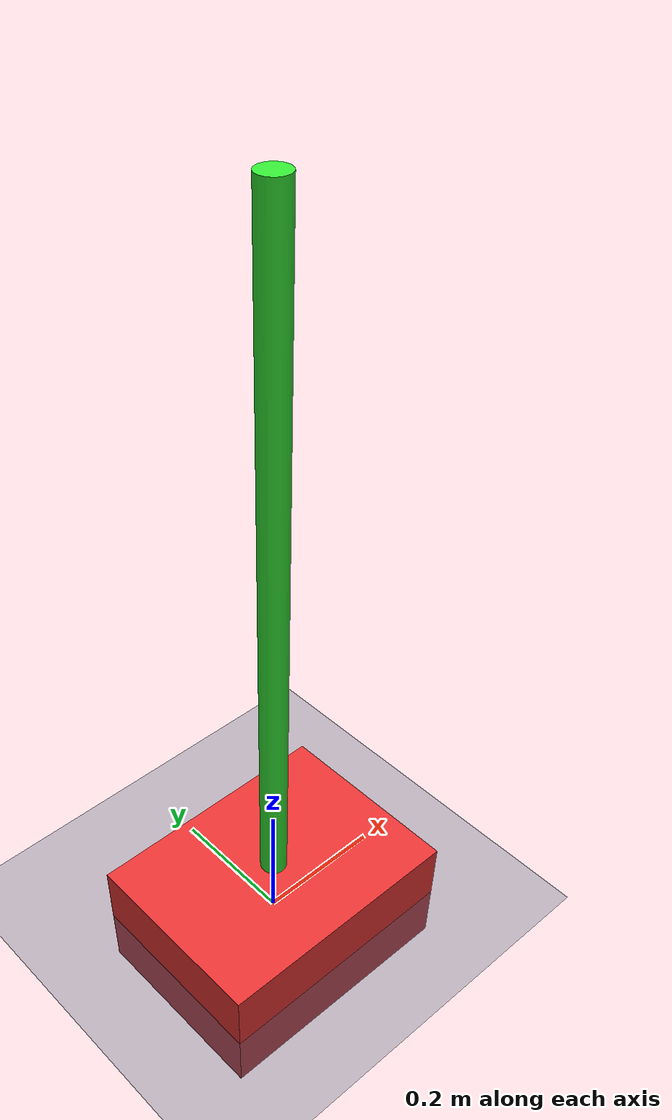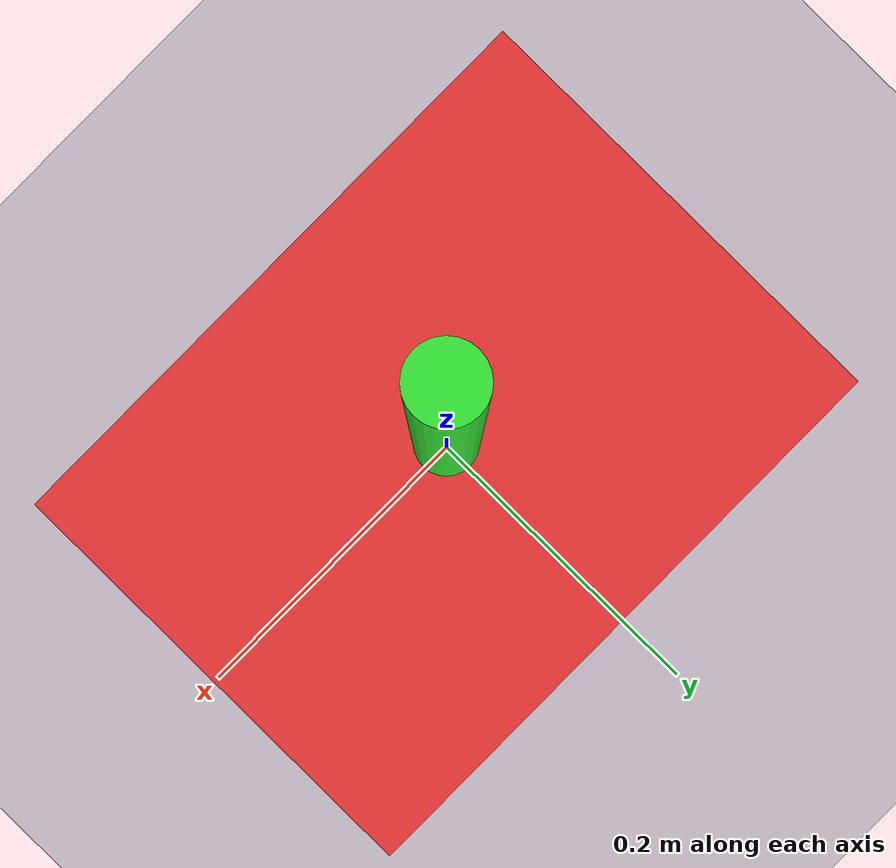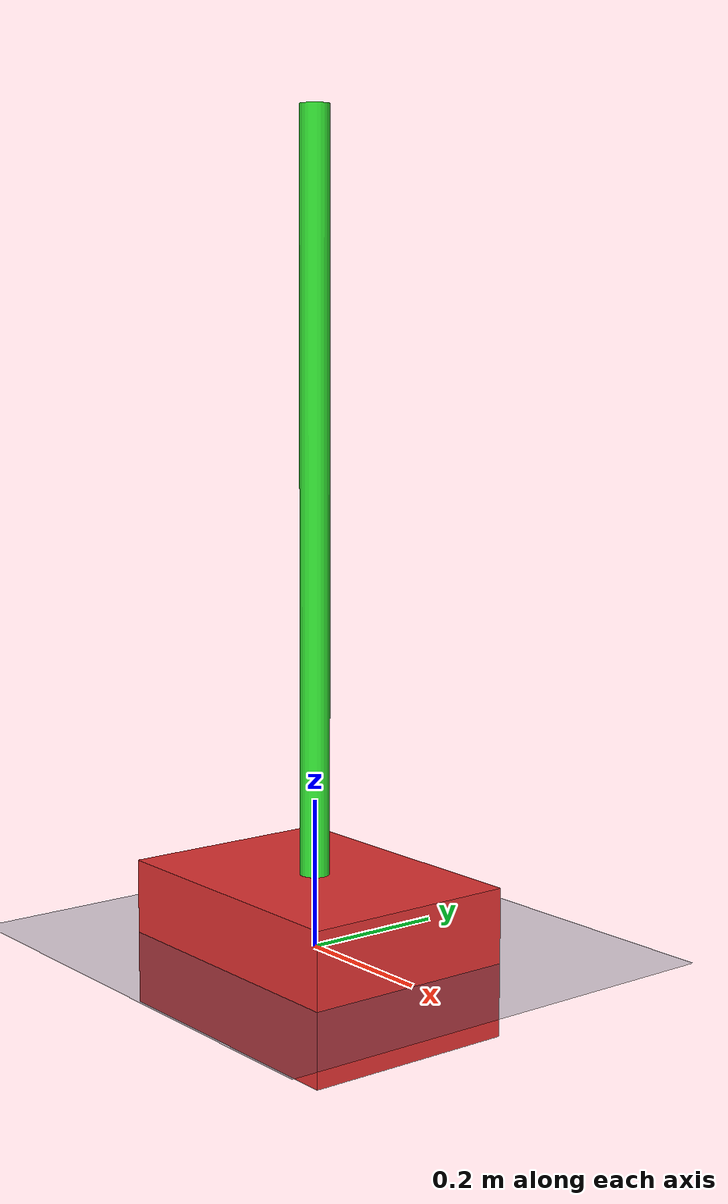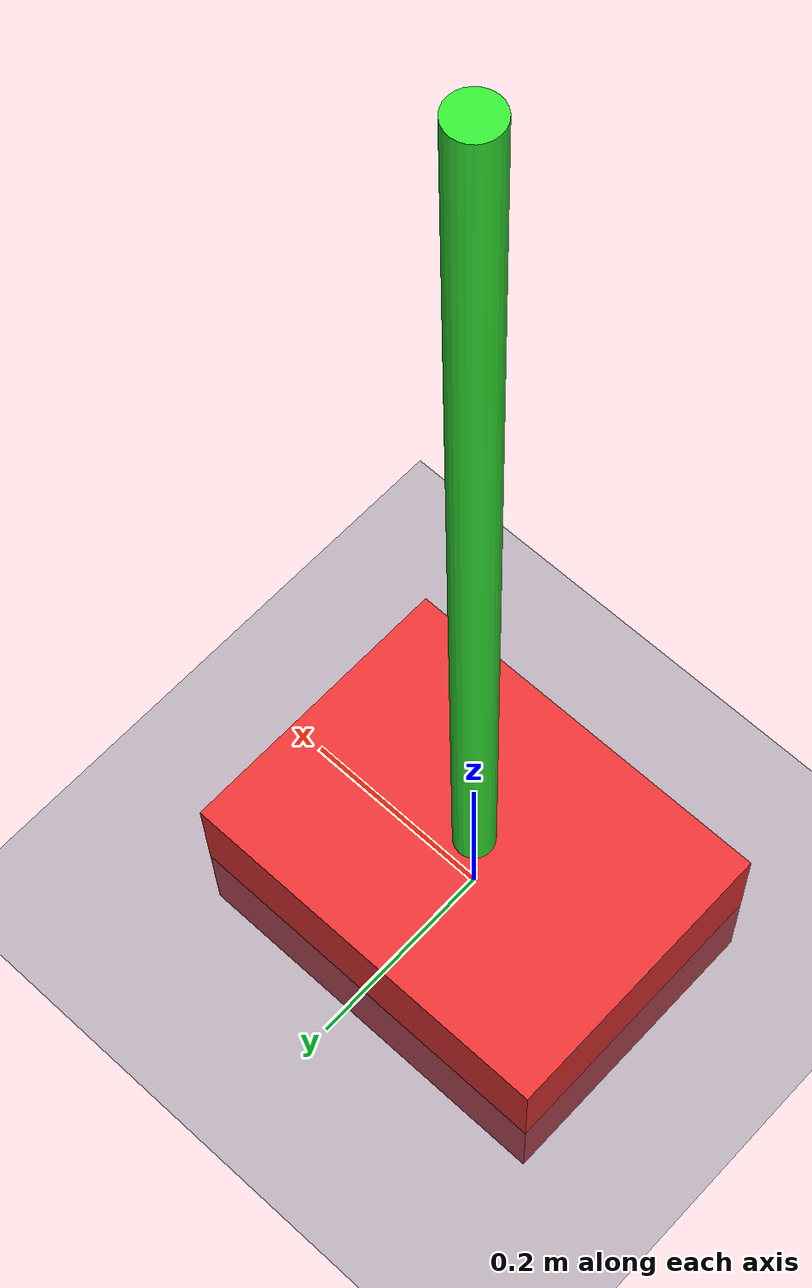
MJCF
<mujoco model="inverted_pendulum">
  <compiler angle="radian" inertiafromgeom="true"/>

  <default>
    <joint limited="true" range="-1 1" damping="0.1"/>
    <geom density="1000"/>
  </default>

  <asset>
    <texture name="skybox" type="skybox" builtin="gradient" rgb1="0.4 0.6 0.8" rgb2="0 0 0" width="800" height="800"/>
    <material name="MatGND" specular="0.3" shininess="0.3" texture="skybox"/>
    <material name="MatCart" rgba=".9 .2 .2 1"/>
    <material name="MatPole" rgba=".2 .9 .2 1"/>
  </asset>

  <worldbody>
    <geom name="floor" type="plane" size="0 0 0.1" material="MatGND" rgba="0.5 0.5 0.5 1"/>
    <light pos="0 0 1" dir="0 0 -1" diffuse="0.8 0.8 0.8"/>

    <body name="cart" pos="0 0 0">
      <joint name="slide" type="slide" axis="1 0 0" limited="true" range="-5 5" damping="0.1"/>
      <geom name="cart" type="box" size="0.2 0.15 0.1" material="MatCart"/>

      <body name="pole" pos="0 0 0.1">
        <joint name="hinge" type="hinge" axis="0 1 0" pos="0 0 0" damping="0.05" limited="true" range="-3.14 3.14"/>
        <geom name="pole" type="cylinder" size="0.02 0.5" pos="0 0 0.5" material="MatPole"/>
      </body>
    </body>
  </worldbody>

  <actuator>
    <motor name="cart_actuator" joint="slide" gear="100"/>
  </actuator>
</mujoco>
